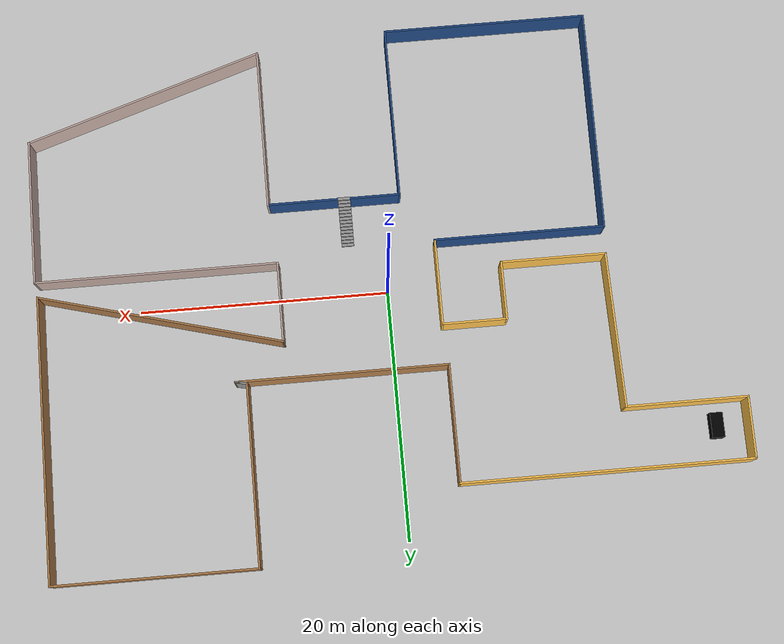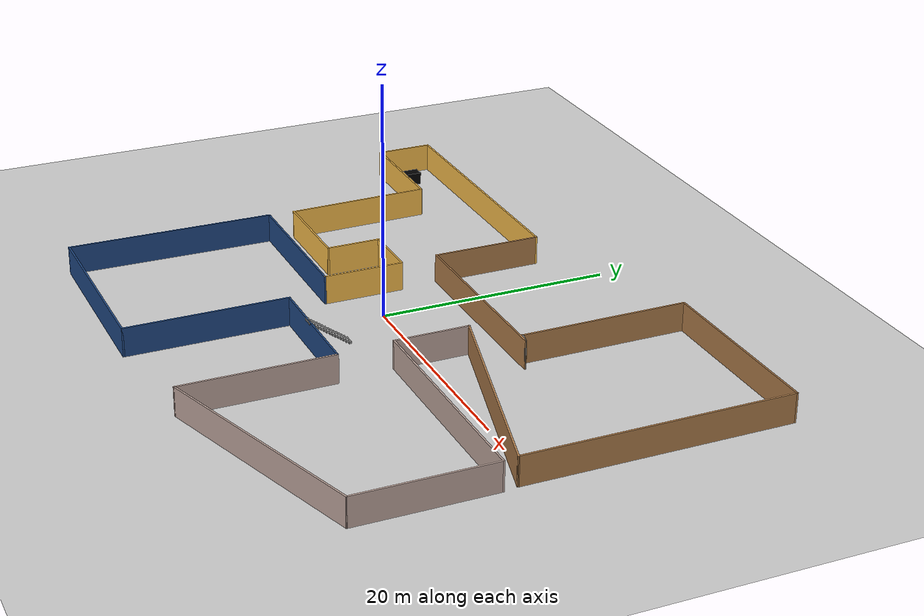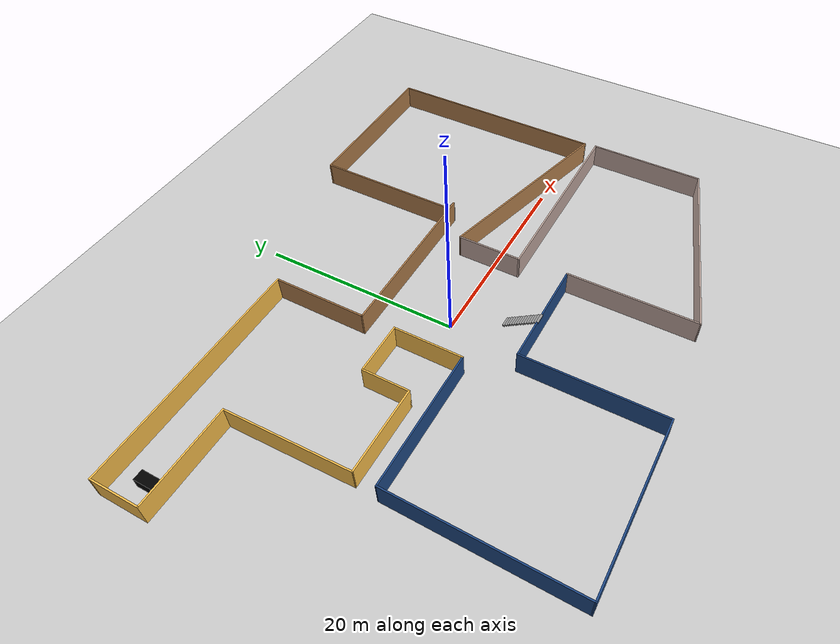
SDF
<sdf version="1.6">
 <world name="default">
  <light name="sun" type="directional">
   <pose>0 0 10 0 -0 0</pose>
   <diffuse>0.8 0.8 0.8 1</diffuse>
   <specular>0.2 0.2 0.2 1</specular>
   <attenuation>
    <range>1000</range>
    <constant>0.9</constant>
    <linear>0.01</linear>
    <quadratic>0.001</quadratic>
   </attenuation>
   <direction>-0.5 0.1 -0.9</direction>
  </light>
  <model name="ground_plane">
   <static>1</static>
   <link name="link">
    <collision name="collision">
     <geometry><plane><normal>0 0 1</normal><size>100 100</size></plane></geometry>
     <surface>
      <contact><collide_bitmask>65535</collide_bitmask></contact>
      <friction><ode><mu>100</mu><mu2>50</mu2></ode></friction>
     </surface>
    </collision>
    <visual name="visual">
     <cast_shadows>0</cast_shadows>
     <geometry><plane><normal>0 0 1</normal><size>100 100</size></plane></geometry>
     <material>
      <script><uri>file://media/materials/scripts/gazebo.material</uri><name>Gazebo/Grey</name></script>
     </material>
    </visual>
   </link>
  </model>
  <gravity>0 0 -9.8</gravity>
  <magnetic_field>6e-06 2.3e-05 -4.2e-05</magnetic_field>
  <atmosphere type="adiabatic"/>
  <physics name="default_physics" default="0" type="ode">
   <max_step_size>0.001</max_step_size>
   <real_time_factor>1</real_time_factor>
   <real_time_update_rate>1000</real_time_update_rate>
  </physics>
  <scene><ambient>0.4 0.4 0.4 1</ambient><background>0.7 0.7 0.7 1</background><shadows>1</shadows></scene>
  <spherical_coordinates>
   <surface_model>EARTH_WGS84</surface_model>
   <latitude_deg>0</latitude_deg>
   <longitude_deg>0</longitude_deg>
   <elevation>0</elevation>
   <heading_deg>0</heading_deg>
  </spherical_coordinates>
  <model name="uav_indoor_room">
   <pose>0.313643 -0.098883 0 0 -0 0</pose>
   <link name="Wall_0">
    <collision name="Wall_0_Collision">
     <geometry><box><size>17 0.15 2.5</size></box></geometry>
     <pose>0 0 1.25 0 -0 0</pose>
    </collision>
    <visual name="Wall_0_Visual">
     <pose>0 0 1.25 0 -0 0</pose>
     <geometry><box><size>17 0.15 2.5</size></box></geometry>
     <material>
      <script><uri>file://media/materials/scripts/gazebo.material</uri><name>Gazebo/Wood</name></script>
      <ambient>1 1 1 1</ambient>
     </material>
     <meta><layer>0</layer></meta>
    </visual>
    <pose>3.84926 6.70787 0 0 -0 3.14159</pose>
   </link>
   <link name="Wall_1">
    <collision name="Wall_1_Collision">
     <geometry><box><size>9.5 0.15 2.5</size></box></geometry>
     <pose>0 0 1.25 0 -0 0</pose>
    </collision>
    <visual name="Wall_1_Visual">
     <pose>0 0 1.25 0 -0 0</pose>
     <geometry><box><size>9.5 0.15 2.5</size></box></geometry>
     <material>
      <script><uri>file://media/materials/scripts/gazebo.material</uri><name>Gazebo/Wood</name></script>
      <ambient>1 1 1 1</ambient>
     </material>
     <meta><layer>0</layer></meta>
    </visual>
    <pose>-4.57573 11.3829 0 0 -0 1.5708</pose>
   </link>
   <link name="Wall_10">
    <collision name="Wall_10_Collision">
     <geometry><box><size>13.75 0.15 2.5</size></box></geometry>
     <pose>0 0 1.25 0 -0 0</pose>
    </collision>
    <visual name="Wall_10_Visual">
     <pose>0 0 1.25 0 -0 0</pose>
     <geometry><box><size>13.75 0.15 2.5</size></box></geometry>
     <material>
      <script><uri>file://media/materials/scripts/gazebo.material</uri><name>Gazebo/Grey</name></script>
      <ambient>0.12549 0.290196 0.529412 1</ambient>
     </material>
     <meta><layer>0</layer></meta>
    </visual>
    <pose>-11.1757 -3.39213 0 0 -0 3.14159</pose>
   </link>
   <link name="Wall_11">
    <collision name="Wall_11_Collision">
     <geometry><box><size>18.0018 0.15 2.5</size></box></geometry>
     <pose>0 0 1.25 0 -0 0</pose>
    </collision>
    <visual name="Wall_11_Visual">
     <pose>0 0 1.25 0 -0 0</pose>
     <geometry><box><size>18.0018 0.15 2.5</size></box></geometry>
     <material>
      <script><uri>file://media/materials/scripts/gazebo.material</uri><name>Gazebo/Grey</name></script>
      <ambient>0.12549 0.290196 0.529412 1</ambient>
     </material>
     <meta><layer>0</layer></meta>
    </visual>
    <pose>-18.1007 -12.3171 0 0 -0 -1.5848</pose>
   </link>
   <link name="Wall_12">
    <collision name="Wall_12_Collision">
     <geometry><box><size>16.5 0.15 2.5</size></box></geometry>
     <pose>0 0 1.25 0 -0 0</pose>
    </collision>
    <visual name="Wall_12_Visual">
     <pose>0 0 1.25 0 -0 0</pose>
     <geometry><box><size>16.5 0.15 2.5</size></box></geometry>
     <material>
      <script><uri>file://media/materials/scripts/gazebo.material</uri><name>Gazebo/Grey</name></script>
      <ambient>0.12549 0.290196 0.529412 1</ambient>
     </material>
     <meta><layer>0</layer></meta>
    </visual>
    <pose>-10.0507 -21.2421 0 0 -0 0</pose>
   </link>
   <link name="Wall_13">
    <collision name="Wall_13_Collision">
     <geometry><box><size>14 0.15 2.5</size></box></geometry>
     <pose>0 0 1.25 0 -0 0</pose>
    </collision>
    <visual name="Wall_13_Visual">
     <pose>0 0 1.25 0 -0 0</pose>
     <geometry><box><size>14 0.15 2.5</size></box></geometry>
     <material>
      <script><uri>file://media/materials/scripts/gazebo.material</uri><name>Gazebo/Grey</name></script>
      <ambient>0.12549 0.290196 0.529412 1</ambient>
     </material>
     <meta><layer>0</layer></meta>
    </visual>
    <pose>-1.87573 -14.3171 0 0 -0 1.5708</pose>
   </link>
   <link name="Wall_14">
    <collision name="Wall_14_Collision">
     <geometry><box><size>10.75 0.15 2.5</size></box></geometry>
     <pose>0 0 1.25 0 -0 0</pose>
    </collision>
    <visual name="Wall_14_Visual">
     <pose>0 0 1.25 0 -0 0</pose>
     <geometry><box><size>10.75 0.15 2.5</size></box></geometry>
     <material>
      <script><uri>file://media/materials/scripts/gazebo.material</uri><name>Gazebo/Grey</name></script>
      <ambient>0.12549 0.290196 0.529412 1</ambient>
     </material>
     <meta><layer>0</layer></meta>
    </visual>
    <pose>3.42427 -7.39213 0 0 -0 0</pose>
   </link>
   <link name="Wall_15">
    <collision name="Wall_15_Collision">
     <geometry><box><size>13 0.15 2.5</size></box></geometry>
     <pose>0 0 1.25 0 -0 0</pose>
    </collision>
    <visual name="Wall_15_Visual">
     <pose>0 0 1.25 0 -0 0</pose>
     <geometry><box><size>13 0.15 2.5</size></box></geometry>
     <material>
      <script><uri>file://media/materials/scripts/gazebo.material</uri><name>Gazebo/Grey</name></script>
      <ambient>0.760784 0.662745 0.627451 1</ambient>
     </material>
     <meta><layer>0</layer></meta>
    </visual>
    <pose>8.72427 -13.8171 0 0 -0 -1.5708</pose>
   </link>
   <link name="Wall_16">
    <collision name="Wall_16_Collision">
     <geometry><box><size>20.0323 0.15 2.5</size></box></geometry>
     <pose>0 0 1.25 0 -0 0</pose>
    </collision>
    <visual name="Wall_16_Visual">
     <pose>0 0 1.25 0 -0 0</pose>
     <geometry><box><size>20.0323 0.15 2.5</size></box></geometry>
     <material>
      <script><uri>file://media/materials/scripts/gazebo.material</uri><name>Gazebo/Grey</name></script>
      <ambient>0.760784 0.662745 0.627451 1</ambient>
     </material>
     <meta><layer>0</layer></meta>
    </visual>
    <pose>18.1903 -17.2057 0 0 -0 0.310401</pose>
   </link>
   <link name="Wall_17">
    <collision name="Wall_17_Collision">
     <geometry><box><size>11.75 0.15 2.5</size></box></geometry>
     <pose>0 0 1.25 0 -0 0</pose>
    </collision>
    <visual name="Wall_17_Visual">
     <pose>0 0 1.25 0 -0 0</pose>
     <geometry><box><size>11.75 0.15 2.5</size></box></geometry>
     <material>
      <script><uri>file://media/materials/scripts/gazebo.material</uri><name>Gazebo/Grey</name></script>
      <ambient>0.760784 0.662745 0.627451 1</ambient>
     </material>
     <meta><layer>0</layer></meta>
    </visual>
    <pose>27.6564 -8.36927 0 0 -0 1.5708</pose>
   </link>
   <link name="Wall_18">
    <collision name="Wall_18_Collision">
     <geometry><box><size>19.5 0.15 2.5</size></box></geometry>
     <pose>0 0 1.25 0 -0 0</pose>
    </collision>
    <visual name="Wall_18_Visual">
     <pose>0 0 1.25 0 -0 0</pose>
     <geometry><box><size>19.5 0.15 2.5</size></box></geometry>
     <material>
      <script><uri>file://media/materials/scripts/gazebo.material</uri><name>Gazebo/Grey</name></script>
      <ambient>0.760784 0.662745 0.627451 1</ambient>
     </material>
     <meta><layer>0</layer></meta>
    </visual>
    <pose>17.9814 -2.56927 0 0 -0 3.14159</pose>
   </link>
   <link name="Wall_19">
    <collision name="Wall_19_Collision">
     <geometry><box><size>6.5 0.15 2.5</size></box></geometry>
     <pose>0 0 1.25 0 -0 0</pose>
    </collision>
    <visual name="Wall_19_Visual">
     <pose>0 0 1.25 0 -0 0</pose>
     <geometry><box><size>6.5 0.15 2.5</size></box></geometry>
     <material>
      <script><uri>file://media/materials/scripts/gazebo.material</uri><name>Gazebo/Grey</name></script>
      <ambient>0.760784 0.662745 0.627451 1</ambient>
     </material>
     <meta><layer>0</layer></meta>
    </visual>
    <pose>8.30641 0.605726 0 0 -0 1.5708</pose>
   </link>
   <link name="Wall_2">
    <collision name="Wall_2_Collision">
     <geometry><box><size>23.25 0.15 2.5</size></box></geometry>
     <pose>0 0 1.25 0 -0 0</pose>
    </collision>
    <visual name="Wall_2_Visual">
     <pose>0 0 1.25 0 -0 0</pose>
     <geometry><box><size>23.25 0.15 2.5</size></box></geometry>
     <material>
      <script><uri>file://media/materials/scripts/gazebo.material</uri><name>Gazebo/Grey</name></script>
      <ambient>1 0.764706 0.305882 1</ambient>
     </material>
     <meta><layer>0</layer></meta>
    </visual>
    <pose>-16.1257 16.0579 0 0 -0 3.14159</pose>
   </link>
   <link name="Wall_20">
    <collision name="Wall_20_Collision">
     <geometry><box><size>20 0.15 2.5</size></box></geometry>
     <pose>0 0 1.25 0 -0 0</pose>
    </collision>
    <visual name="Wall_20_Visual">
     <pose>0 0 1.25 0 -0 0</pose>
     <geometry><box><size>20 0.15 2.5</size></box></geometry>
     <material>
      <script><uri>file://media/materials/scripts/gazebo.material</uri><name>Gazebo/Wood</name></script>
      <ambient>1 1 1 1</ambient>
     </material>
     <meta><layer>0</layer></meta>
    </visual>
    <pose>17.8932 1.21195 0 0 -0 -0.261799</pose>
   </link>
   <link name="Wall_21">
    <collision name="Wall_21_Collision">
     <geometry><box><size>22.75 0.15 2.5</size></box></geometry>
     <pose>0 0 1.25 0 -0 0</pose>
    </collision>
    <visual name="Wall_21_Visual">
     <pose>0 0 1.25 0 -0 0</pose>
     <geometry><box><size>22.75 0.15 2.5</size></box></geometry>
     <material>
      <script><uri>file://media/materials/scripts/gazebo.material</uri><name>Gazebo/Wood</name></script>
      <ambient>1 1 1 1</ambient>
     </material>
     <meta><layer>0</layer></meta>
    </visual>
    <pose>27.48 9.94317 0 0 -0 1.5708</pose>
   </link>
   <link name="Wall_22">
    <collision name="Wall_22_Collision">
     <geometry><box><size>16.25 0.15 2.5</size></box></geometry>
     <pose>0 0 1.25 0 -0 0</pose>
    </collision>
    <visual name="Wall_22_Visual">
     <pose>0 0 1.25 0 -0 0</pose>
     <geometry><box><size>16.25 0.15 2.5</size></box></geometry>
     <material>
      <script><uri>file://media/materials/scripts/gazebo.material</uri><name>Gazebo/Wood</name></script>
      <ambient>1 1 1 1</ambient>
     </material>
     <meta><layer>0</layer></meta>
    </visual>
    <pose>19.43 21.2432 0 0 -0 3.14159</pose>
   </link>
   <link name="Wall_23">
    <collision name="Wall_23_Collision">
     <geometry><box><size>14.5 0.15 2.5</size></box></geometry>
     <pose>0 0 1.25 0 -0 0</pose>
    </collision>
    <visual name="Wall_23_Visual">
     <pose>0 0 1.25 0 -0 0</pose>
     <geometry><box><size>14.5 0.15 2.5</size></box></geometry>
     <material>
      <script><uri>file://media/materials/scripts/gazebo.material</uri><name>Gazebo/Wood</name></script>
      <ambient>1 1 1 1</ambient>
     </material>
     <meta><layer>0</layer></meta>
    </visual>
    <pose>11.38 14.0682 0 0 -0 -1.5708</pose>
   </link>
   <link name="Wall_24">
    <collision name="Wall_24_Collision">
     <geometry><box><size>1.06322 0.15 2.5</size></box></geometry>
     <pose>0 0 1.25 0 -0 0</pose>
    </collision>
    <visual name="Wall_24_Visual">
     <pose>0 0 1.25 0 -0 0</pose>
     <geometry><box><size>1.06322 0.15 2.5</size></box></geometry>
     <material>
      <script><uri>file://media/materials/scripts/gazebo.material</uri><name>Gazebo/Grey</name></script>
      <ambient>1 1 1 1</ambient>
     </material>
     <meta><layer>0</layer></meta>
    </visual>
    <pose>11.8272 6.80052 0 0 -0 -0.204321</pose>
   </link>
   <link name="Wall_3">
    <collision name="Wall_3_Collision">
     <geometry><box><size>5 0.15 2.5</size></box></geometry>
     <pose>0 0 1.25 0 -0 0</pose>
    </collision>
    <visual name="Wall_3_Visual">
     <pose>0 0 1.25 0 -0 0</pose>
     <geometry><box><size>5 0.15 2.5</size></box></geometry>
     <material>
      <script><uri>file://media/materials/scripts/gazebo.material</uri><name>Gazebo/Grey</name></script>
      <ambient>1 0.764706 0.305882 1</ambient>
     </material>
     <meta><layer>0</layer></meta>
    </visual>
    <pose>-27.6757 13.6329 0 0 -0 -1.5708</pose>
   </link>
   <link name="Wall_4">
    <collision name="Wall_4_Collision">
     <geometry><box><size>9.75 0.15 2.5</size></box></geometry>
     <pose>0 0 1.25 0 -0 0</pose>
    </collision>
    <visual name="Wall_4_Visual">
     <pose>0 0 1.25 0 -0 0</pose>
     <geometry><box><size>9.75 0.15 2.5</size></box></geometry>
     <material>
      <script><uri>file://media/materials/scripts/gazebo.material</uri><name>Gazebo/Grey</name></script>
      <ambient>1 0.764706 0.305882 1</ambient>
     </material>
     <meta><layer>0</layer></meta>
    </visual>
    <pose>-22.8757 11.2079 0 0 -0 0</pose>
   </link>
   <link name="Wall_5">
    <collision name="Wall_5_Collision">
     <geometry><box><size>12.5025 0.15 2.5</size></box></geometry>
     <pose>0 0 1.25 0 -0 0</pose>
    </collision>
    <visual name="Wall_5_Visual">
     <pose>0 0 1.25 0 -0 0</pose>
     <geometry><box><size>12.5025 0.15 2.5</size></box></geometry>
     <material>
      <script><uri>file://media/materials/scripts/gazebo.material</uri><name>Gazebo/Grey</name></script>
      <ambient>1 0.764706 0.305882 1</ambient>
     </material>
     <meta><layer>0</layer></meta>
    </visual>
    <pose>-17.9507 5.03287 0 0 -0 -1.55056</pose>
   </link>
   <link name="Wall_6">
    <collision name="Wall_6_Collision">
     <geometry><box><size>8.5 0.15 2.5</size></box></geometry>
     <pose>0 0 1.25 0 -0 0</pose>
    </collision>
    <visual name="Wall_6_Visual">
     <pose>0 0 1.25 0 -0 0</pose>
     <geometry><box><size>8.5 0.15 2.5</size></box></geometry>
     <material>
      <script><uri>file://media/materials/scripts/gazebo.material</uri><name>Gazebo/Grey</name></script>
      <ambient>1 0.764706 0.305882 1</ambient>
     </material>
     <meta><layer>0</layer></meta>
    </visual>
    <pose>-13.6507 -1.14213 0 0 -0 0</pose>
   </link>
   <link name="Wall_7">
    <collision name="Wall_7_Collision">
     <geometry><box><size>4.75 0.15 2.5</size></box></geometry>
     <pose>0 0 1.25 0 -0 0</pose>
    </collision>
    <visual name="Wall_7_Visual">
     <pose>0 0 1.25 0 -0 0</pose>
     <geometry><box><size>4.75 0.15 2.5</size></box></geometry>
     <material>
      <script><uri>file://media/materials/scripts/gazebo.material</uri><name>Gazebo/Grey</name></script>
      <ambient>1 0.764706 0.305882 1</ambient>
     </material>
     <meta><layer>0</layer></meta>
    </visual>
    <pose>-9.47574 1.15787 0 0 -0 1.5708</pose>
   </link>
   <link name="Wall_8">
    <collision name="Wall_8_Collision">
     <geometry><box><size>5.25 0.15 2.5</size></box></geometry>
     <pose>0 0 1.25 0 -0 0</pose>
    </collision>
    <visual name="Wall_8_Visual">
     <pose>0 0 1.25 0 -0 0</pose>
     <geometry><box><size>5.25 0.15 2.5</size></box></geometry>
     <material>
      <script><uri>file://media/materials/scripts/gazebo.material</uri><name>Gazebo/Grey</name></script>
      <ambient>1 0.764706 0.305882 1</ambient>
     </material>
     <meta><layer>0</layer></meta>
    </visual>
    <pose>-6.92574 3.45787 0 0 -0 0</pose>
   </link>
   <link name="Wall_9">
    <collision name="Wall_9_Collision">
     <geometry><box><size>7 0.15 2.5</size></box></geometry>
     <pose>0 0 1.25 0 -0 0</pose>
    </collision>
    <visual name="Wall_9_Visual">
     <pose>0 0 1.25 0 -0 0</pose>
     <geometry><box><size>7 0.15 2.5</size></box></geometry>
     <material>
      <script><uri>file://media/materials/scripts/gazebo.material</uri><name>Gazebo/Grey</name></script>
      <ambient>1 0.764706 0.305882 1</ambient>
     </material>
     <meta><layer>0</layer></meta>
    </visual>
    <pose>-4.37573 0.032873 0 0 -0 -1.5708</pose>
   </link>
   <static>1</static>
  </model>
  <model name="fire_mockup">
   <static>true</static>
   <link name="fire_mockup">
    <pose>-25 13 0.025 0 0 0</pose>
    <visual name="visual">
     <geometry><box><size>1 2 2</size></box></geometry>
     <material><ambient>0 0 0 1</ambient><emissive>1 0.033 0 1</emissive><diffuse>0 0 0 1</diffuse></material>
    </visual>
   </link>
  </model>
  <model name="stairs_uav">
   <pose>2.903 -5.861 0 0 -0 0</pose>
   <link name="Stairs_0">
    <visual name="Stairs_0_Visual_0">
     <pose>0 1.63333 0.083333 0 -0 0</pose>
     <geometry><box><size>1 0.233333 0.166667</size></box></geometry>
     <material>
      <script><uri>file://media/materials/scripts/gazebo.material</uri><name>Gazebo/Grey</name></script>
      <ambient>1 1 1 1</ambient>
     </material>
     <meta><layer>0</layer></meta>
    </visual>
    <collision name="Stairs_0_Collision_0">
     <geometry><box><size>1 0.233333 0.166667</size></box></geometry>
     <pose>0 1.63333 0.083333 0 -0 0</pose>
    </collision>
    <visual name="Stairs_0_Visual_1">
     <pose>0 1.4 0.25 0 -0 0</pose>
     <geometry><box><size>1 0.233333 0.166667</size></box></geometry>
     <material>
      <script><uri>file://media/materials/scripts/gazebo.material</uri><name>Gazebo/Grey</name></script>
      <ambient>1 1 1 1</ambient>
     </material>
     <meta><layer>0</layer></meta>
    </visual>
    <collision name="Stairs_0_Collision_1">
     <geometry><box><size>1 0.233333 0.166667</size></box></geometry>
     <pose>0 1.4 0.25 0 -0 0</pose>
    </collision>
    <visual name="Stairs_0_Visual_2">
     <pose>0 1.16667 0.416667 0 -0 0</pose>
     <geometry><box><size>1 0.233333 0.166667</size></box></geometry>
     <material>
      <script><uri>file://media/materials/scripts/gazebo.material</uri><name>Gazebo/Grey</name></script>
      <ambient>1 1 1 1</ambient>
     </material>
     <meta><layer>0</layer></meta>
    </visual>
    <collision name="Stairs_0_Collision_2">
     <geometry><box><size>1 0.233333 0.166667</size></box></geometry>
     <pose>0 1.16667 0.416667 0 -0 0</pose>
    </collision>
    <visual name="Stairs_0_Visual_3">
     <pose>0 0.933333 0.583333 0 -0 0</pose>
     <geometry><box><size>1 0.233333 0.166667</size></box></geometry>
     <material>
      <script><uri>file://media/materials/scripts/gazebo.material</uri><name>Gazebo/Grey</name></script>
      <ambient>1 1 1 1</ambient>
     </material>
     <meta><layer>0</layer></meta>
    </visual>
    <collision name="Stairs_0_Collision_3">
     <geometry><box><size>1 0.233333 0.166667</size></box></geometry>
     <pose>0 0.933333 0.583333 0 -0 0</pose>
    </collision>
    <visual name="Stairs_0_Visual_4">
     <pose>0 0.7 0.75 0 -0 0</pose>
     <geometry><box><size>1 0.233333 0.166667</size></box></geometry>
     <material>
      <script><uri>file://media/materials/scripts/gazebo.material</uri><name>Gazebo/Grey</name></script>
      <ambient>1 1 1 1</ambient>
     </material>
     <meta><layer>0</layer></meta>
    </visual>
    <collision name="Stairs_0_Collision_4">
     <geometry><box><size>1 0.233333 0.166667</size></box></geometry>
     <pose>0 0.7 0.75 0 -0 0</pose>
    </collision>
    <visual name="Stairs_0_Visual_5">
     <pose>0 0.466667 0.916667 0 -0 0</pose>
     <geometry><box><size>1 0.233333 0.166667</size></box></geometry>
     <material>
      <script><uri>file://media/materials/scripts/gazebo.material</uri><name>Gazebo/Grey</name></script>
      <ambient>1 1 1 1</ambient>
     </material>
     <meta><layer>0</layer></meta>
    </visual>
    <collision name="Stairs_0_Collision_5">
     <geometry><box><size>1 0.233333 0.166667</size></box></geometry>
     <pose>0 0.466667 0.916667 0 -0 0</pose>
    </collision>
    <visual name="Stairs_0_Visual_6">
     <pose>0 0.233334 1.08333 0 -0 0</pose>
     <geometry><box><size>1 0.233333 0.166667</size></box></geometry>
     <material>
      <script><uri>file://media/materials/scripts/gazebo.material</uri><name>Gazebo/Grey</name></script>
      <ambient>1 1 1 1</ambient>
     </material>
     <meta><layer>0</layer></meta>
    </visual>
    <collision name="Stairs_0_Collision_6">
     <geometry><box><size>1 0.233333 0.166667</size></box></geometry>
     <pose>0 0.233334 1.08333 0 -0 0</pose>
    </collision>
    <visual name="Stairs_0_Visual_7">
     <pose>0 0 1.25 0 -0 0</pose>
     <geometry><box><size>1 0.233333 0.166667</size></box></geometry>
     <material>
      <script><uri>file://media/materials/scripts/gazebo.material</uri><name>Gazebo/Grey</name></script>
      <ambient>1 1 1 1</ambient>
     </material>
     <meta><layer>0</layer></meta>
    </visual>
    <collision name="Stairs_0_Collision_7">
     <geometry><box><size>1 0.233333 0.166667</size></box></geometry>
     <pose>0 0 1.25 0 -0 0</pose>
    </collision>
    <visual name="Stairs_0_Visual_8">
     <pose>0 -0.233334 1.41667 0 -0 0</pose>
     <geometry><box><size>1 0.233333 0.166667</size></box></geometry>
     <material>
      <script><uri>file://media/materials/scripts/gazebo.material</uri><name>Gazebo/Grey</name></script>
      <ambient>1 1 1 1</ambient>
     </material>
     <meta><layer>0</layer></meta>
    </visual>
    <collision name="Stairs_0_Collision_8">
     <geometry><box><size>1 0.233333 0.166667</size></box></geometry>
     <pose>0 -0.233334 1.41667 0 -0 0</pose>
    </collision>
    <visual name="Stairs_0_Visual_9">
     <pose>0 -0.466667 1.58333 0 -0 0</pose>
     <geometry><box><size>1 0.233333 0.166667</size></box></geometry>
     <material>
      <script><uri>file://media/materials/scripts/gazebo.material</uri><name>Gazebo/Grey</name></script>
      <ambient>1 1 1 1</ambient>
     </material>
     <meta><layer>0</layer></meta>
    </visual>
    <collision name="Stairs_0_Collision_9">
     <geometry><box><size>1 0.233333 0.166667</size></box></geometry>
     <pose>0 -0.466667 1.58333 0 -0 0</pose>
    </collision>
    <visual name="Stairs_0_Visual_10">
     <pose>0 -0.7 1.75 0 -0 0</pose>
     <geometry><box><size>1 0.233333 0.166667</size></box></geometry>
     <material>
      <script><uri>file://media/materials/scripts/gazebo.material</uri><name>Gazebo/Grey</name></script>
      <ambient>1 1 1 1</ambient>
     </material>
     <meta><layer>0</layer></meta>
    </visual>
    <collision name="Stairs_0_Collision_10">
     <geometry><box><size>1 0.233333 0.166667</size></box></geometry>
     <pose>0 -0.7 1.75 0 -0 0</pose>
    </collision>
    <visual name="Stairs_0_Visual_11">
     <pose>0 -0.933333 1.91667 0 -0 0</pose>
     <geometry><box><size>1 0.233333 0.166667</size></box></geometry>
     <material>
      <script><uri>file://media/materials/scripts/gazebo.material</uri><name>Gazebo/Grey</name></script>
      <ambient>1 1 1 1</ambient>
     </material>
     <meta><layer>0</layer></meta>
    </visual>
    <collision name="Stairs_0_Collision_11">
     <geometry><box><size>1 0.233333 0.166667</size></box></geometry>
     <pose>0 -0.933333 1.91667 0 -0 0</pose>
    </collision>
    <visual name="Stairs_0_Visual_12">
     <pose>0 -1.16667 2.08333 0 -0 0</pose>
     <geometry><box><size>1 0.233333 0.166667</size></box></geometry>
     <material>
      <script><uri>file://media/materials/scripts/gazebo.material</uri><name>Gazebo/Grey</name></script>
      <ambient>1 1 1 1</ambient>
     </material>
     <meta><layer>0</layer></meta>
    </visual>
    <collision name="Stairs_0_Collision_12">
     <geometry><box><size>1 0.233333 0.166667</size></box></geometry>
     <pose>0 -1.16667 2.08333 0 -0 0</pose>
    </collision>
    <visual name="Stairs_0_Visual_13">
     <pose>0 -1.4 2.25 0 -0 0</pose>
     <geometry><box><size>1 0.233333 0.166667</size></box></geometry>
     <material>
      <script><uri>file://media/materials/scripts/gazebo.material</uri><name>Gazebo/Grey</name></script>
      <ambient>1 1 1 1</ambient>
     </material>
     <meta><layer>0</layer></meta>
    </visual>
    <collision name="Stairs_0_Collision_13">
     <geometry><box><size>1 0.233333 0.166667</size></box></geometry>
     <pose>0 -1.4 2.25 0 -0 0</pose>
    </collision>
    <visual name="Stairs_0_Visual_14">
     <pose>0 -1.63333 2.41667 0 -0 0</pose>
     <geometry><box><size>1 0.233333 0.166667</size></box></geometry>
     <material>
      <script><uri>file://media/materials/scripts/gazebo.material</uri><name>Gazebo/Grey</name></script>
      <ambient>1 1 1 1</ambient>
     </material>
     <meta><layer>0</layer></meta>
    </visual>
    <collision name="Stairs_0_Collision_14">
     <geometry><box><size>1 0.233333 0.166667</size></box></geometry>
     <pose>0 -1.63333 2.41667 0 -0 0</pose>
    </collision>
   </link>
   <static>1</static>
  </model>
 </world>
</sdf>
